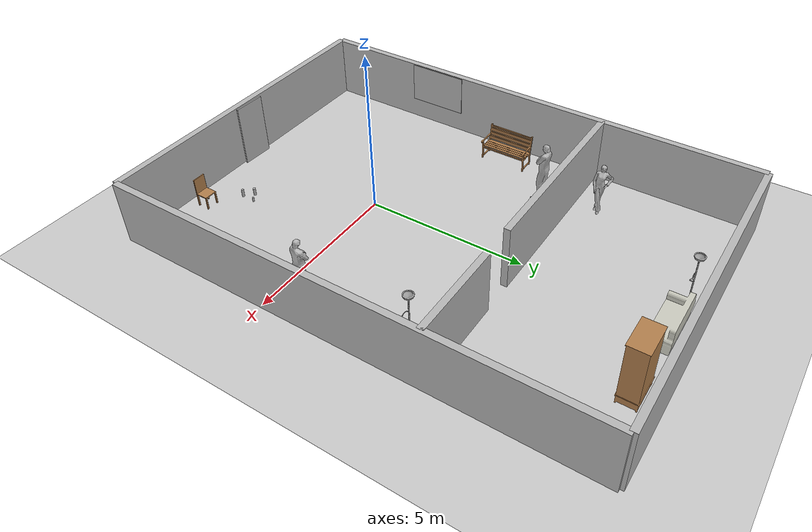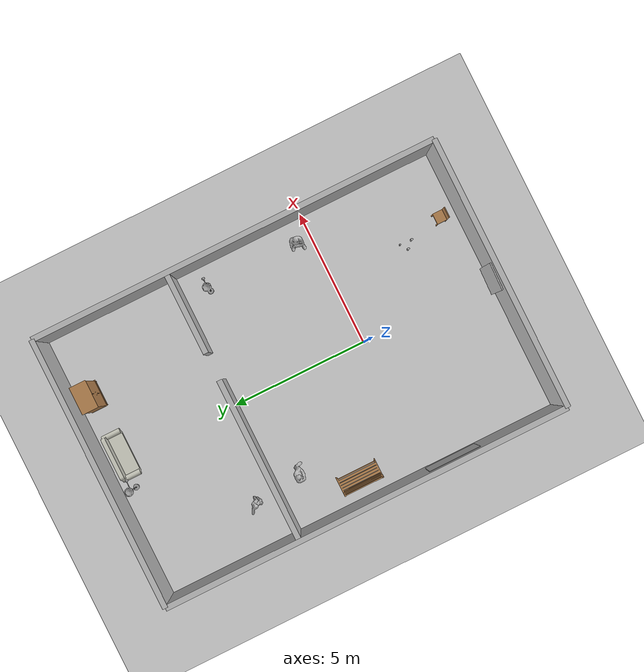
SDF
<sdf version="1.4">
 <world name="default">
  <physics type="ode">
   <gravity>0 0 -9.81</gravity>
   <ode>
    <solver><type>quick</type><iters>20</iters><sor>1.0</sor></solver>
    <constraints>
     <cfm>0.0</cfm>
     <erp>0.2</erp>
     <contact_max_correcting_vel>100.0</contact_max_correcting_vel>
     <contact_surface_layer>0.0</contact_surface_layer>
    </constraints>
   </ode>
   <real_time_update_rate>1000</real_time_update_rate>
   <max_step_size>0.001</max_step_size>
  </physics>
  <include><uri>model://sun</uri></include>
  <include><uri>model://ground_plane</uri></include>
  <model name="wall_1_model">
   <pose>0 -5 1 0 0 0</pose>
   <static>true</static>
   <link name="wall_1_body">
    <inertial>
     <mass>1.0</mass>
     <inertia><ixx>1.0</ixx><ixy>0.0</ixy><ixz>0.0</ixz><iyy>1.0</iyy><iyz>0.0</iyz><izz>1.0</izz></inertia>
    </inertial>
    <collision name="collision"><geometry><box><size>10 0.2 2</size></box></geometry></collision>
    <visual name="visual"><geometry><box><size>10 0.2 2</size></box></geometry></visual>
   </link>
  </model>
  <model name="wall_2_model">
   <pose>0 10 1 0 0 0</pose>
   <static>true</static>
   <link name="wall_2_body">
    <inertial>
     <mass>1.0</mass>
     <inertia><ixx>1.0</ixx><ixy>0.0</ixy><ixz>0.0</ixz><iyy>1.0</iyy><iyz>0.0</iyz><izz>1.0</izz></inertia>
    </inertial>
    <collision name="collision"><geometry><box><size>10 0.2 2</size></box></geometry></collision>
    <visual name="visual"><geometry><box><size>10 0.2 2</size></box></geometry></visual>
   </link>
  </model>
  <model name="wall_3_model">
   <pose>-5 2.5 1 0 0 0</pose>
   <static>true</static>
   <link name="wall_3_body">
    <inertial>
     <mass>1.0</mass>
     <inertia><ixx>1.0</ixx><ixy>0.0</ixy><ixz>0.0</ixz><iyy>1.0</iyy><iyz>0.0</iyz><izz>1.0</izz></inertia>
    </inertial>
    <collision name="collision"><geometry><box><size>0.2 15 2</size></box></geometry></collision>
    <visual name="visual"><geometry><box><size>0.2 15 2</size></box></geometry></visual>
   </link>
  </model>
  <model name="wall_4_model">
   <pose>5 2.5 1 0 0 0</pose>
   <static>true</static>
   <link name="wall_4_body">
    <inertial>
     <mass>1.0</mass>
     <inertia><ixx>1.0</ixx><ixy>0.0</ixy><ixz>0.0</ixz><iyy>1.0</iyy><iyz>0.0</iyz><izz>1.0</izz></inertia>
    </inertial>
    <collision name="collision"><geometry><box><size>0.2 15 2</size></box></geometry></collision>
    <visual name="visual"><geometry><box><size>0.2 15 2</size></box></geometry></visual>
   </link>
  </model>
  <model name="wall_5_model">
   <pose>-2 5 1 0 0 0</pose>
   <static>true</static>
   <link name="wall_5_body">
    <inertial>
     <mass>1.0</mass>
     <inertia><ixx>1.0</ixx><ixy>0.0</ixy><ixz>0.0</ixz><iyy>1.0</iyy><iyz>0.0</iyz><izz>1.0</izz></inertia>
    </inertial>
    <collision name="collision"><geometry><box><size>6 0.2 2</size></box></geometry></collision>
    <visual name="visual"><geometry><box><size>6 0.2 2</size></box></geometry></visual>
   </link>
  </model>
  <model name="wall_6_model">
   <pose>3.5 5 1 0 0 0</pose>
   <static>true</static>
   <link name="wall_6_body">
    <inertial>
     <mass>1.0</mass>
     <inertia><ixx>1.0</ixx><ixy>0.0</ixy><ixz>0.0</ixz><iyy>1.0</iyy><iyz>0.0</iyz><izz>1.0</izz></inertia>
    </inertial>
    <collision name="collision"><geometry><box><size>3 0.2 2</size></box></geometry></collision>
    <visual name="visual"><geometry><box><size>3 0.2 2</size></box></geometry></visual>
   </link>
  </model>
  <include><uri>model://dining_chair</uri><pose>2.5 -4.5 0.01 0 0 0</pose></include>
  <include>
   <name>pringles</name>
   <uri>model://pringles</uri>
   <pose>2.40654 -3 0.777497 5.1e-05 -0.000165 0.00025</pose>
  </include>
  <include><uri>model://coke_can_slim</uri><pose>2.43428 -2.57448 0.734997 9.1e-05 -0.00023 0</pose></include>
  <include><uri>model://pringles2</uri><pose>2.17347 -2.75653 0.657498 3.9e-05 -0.000197 -3e-06</pose></include>
  <include>
   <uri>model://wardrobe</uri>
   <pose>2.000000 9.000000 0.000000 0.000000 0.000000 0.000000</pose>
  </include>
  <include><uri>model://aruco_board</uri><pose>-4.85 -0.86 1.35 0 0 0</pose></include>
  <include>
   <uri>model://wall_with_reem_photo</uri>
   <pose>-0.025898 -4.80869 1 1e-06 -6e-06 -1.60377</pose>
  </include>
  <include><uri>model://bench</uri><pose>-4.465430 1.502710 0.000000 0.000000 0.000000 0.000000</pose></include>
  <include><uri>model://sofa</uri><pose>-0.518195 9.000000 0.000000 0.000000 0.000000 0.000000</pose></include>
  <include>
   <name>floor_lamp_0</name>
   <uri>model://floor_lamp</uri>
   <pose>-1.000000 9.417350 0.000000 0.000000 0.000000 0.000000</pose>
  </include>
  <include>
   <name>floor_lamp_1</name>
   <uri>model://floor_lamp</uri>
   <pose>4.000000 4.00000 0.000000 0.000000 0.000000 0.000000</pose>
  </include>
  <include>
   <name>male03</name>
   <uri>model://citizen_extras_male_03</uri>
   <pose>4.0 0.53 0.01 0.0125 0.0023 -1.718</pose>
  </include>
  <include>
   <name>female03</name>
   <uri>model://citizen_extras_female_03</uri>
   <pose>-3.3 5.8 0.01 0.011 0.0126 1.6451</pose>
  </include>
  <include>
   <name>male03bis</name>
   <uri>model://citizen_extras_male_03</uri>
   <pose>-3.000000 4.000000 0.000000 0.000000 0.000000 0.000000</pose>
  </include>
 </world>
</sdf>

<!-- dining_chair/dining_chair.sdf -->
<sdf version="1.4">
  <model name="dining_chair">
    <static>1</static>
    <link name="link">

      <collision name="colision1">
        <pose>0 0 0 0 0 0</pose>
        <geometry>
          <mesh>
            <uri>model://dining_chair/meshes/dining_chair.stl</uri>
	    <scale> 1 1 1 </scale>
          </mesh>
        </geometry>
        <surface>
          <bounce />
          <friction>
            <ode />
          </friction>
          <contact>
            <ode />
          </contact>
        </surface>
      </collision>

      <visual name="visual1">
        <pose>0 0 0 0 0 0</pose>
        <geometry>
          <mesh>
            <uri>model://dining_chair/meshes/dining_chair.stl</uri>
	    <scale> 1 1 1 </scale>
          </mesh>
        </geometry>
        <material>
          <script>
            <uri>file://media/materials/scripts/gazebo.material</uri>
            <name>Gazebo/Wood</name>
          </script>
        </material>
      </visual>

      <velocity_decay>
        <linear>0.000000</linear>
        <angular>0.000000</angular>
      </velocity_decay>
      <self_collide>0</self_collide>
      <kinematic>0</kinematic>
      <gravity>1</gravity>
    </link>
  </model>
</sdf>

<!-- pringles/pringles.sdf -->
<sdf version='1.4'>
  <model name="pringles">
      <static>0</static>
      <link name='link'>
        <inertial>
          <mass>0.25</mass>
          <inertia>
            <ixx>0.000000</ixx>
            <ixy>0.000000</ixy>
            <ixz>0.000000</ixz>
            <iyy>0.000000</iyy>
            <iyz>0.000000</iyz>
            <izz>0.000000</izz>
          </inertia>
        </inertial>
        <collision name='collision'>
          <geometry>
            <cylinder>
              <radius>0.04</radius>
              <length>0.235</length>
            </cylinder>
          </geometry>
          <surface>
            <bounce/>
            <friction>
              <ode/>
            </friction>
            <contact>
              <ode/>
            </contact>
          </surface>
        </collision>
        <visual name='visual'>
          <geometry>
            <cylinder>
              <radius>0.04</radius>
              <length>0.235</length>
            </cylinder>
          </geometry>
          <material>
            <script>
	      <uri>model://pringles/material/scripts</uri>
	      <uri>model://pringles/material/textures</uri>
              <name>Custom/pringles</name>
            </script>
          </material>
        </visual>
        <velocity_decay>
          <linear>0.000000</linear>
          <angular>0.000000</angular>
        </velocity_decay>
        <self_collide>0</self_collide>
        <kinematic>0</kinematic>
        <gravity>1</gravity>
      </link>
  </model>
</sdf>

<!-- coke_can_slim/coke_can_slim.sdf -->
<sdf version='1.4'>
  <model name="coke_can_slim">
      <static>0</static>
      <link name='link'>
        <inertial>
          <mass>0.15</mass>
          <inertia>
            <ixx>2079.98</ixx>
            <ixy>0.000000</ixy>
            <ixz>0.000000</ixz>
            <iyy>2079.98</iyy>
            <iyz>0.000000</iyz>
            <izz>419.21</izz>
          </inertia>
        </inertial>
        <collision name='collision'>
          <geometry>
            <cylinder>
              <radius>0.029</radius>
              <length>0.15</length>
            </cylinder>
          </geometry>
          <surface>
            <bounce/>
            <friction>
              <ode/>
            </friction>
            <contact>
              <ode/>
            </contact>
          </surface>
        </collision>
        <visual name='visual'>
          <geometry>
            <cylinder>
              <radius>0.029</radius>
              <length>0.15</length>
            </cylinder>
          </geometry>
          <material>
            <script>
              <uri>model://coke_can_slim/material/scripts</uri>
              <uri>model://coke_can_slim/material/textures</uri>
              <name>Custom/coke_can_slim</name>
            </script>
          </material>
        </visual>
        <velocity_decay>
          <linear>0.000000</linear>
          <angular>0.000000</angular>
        </velocity_decay>
        <self_collide>0</self_collide>
        <kinematic>0</kinematic>
        <gravity>1</gravity>
      </link>
  </model>
</sdf>

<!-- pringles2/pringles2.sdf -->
<sdf version="1.4">
  <model name="pringles2">
    <static>0</static>
    <link name="link">
      <inertial>
        <mass>0.25</mass>
        <inertia>
          <ixx>0.000000</ixx>
          <ixy>0.000000</ixy>
          <ixz>0.000000</ixz>
          <iyy>0.000000</iyy>
          <iyz>0.000000</iyz>
          <izz>0.000000</izz>
        </inertia>
      </inertial>
      <collision name="collision">
        <pose>0 0 0.12 3.1416 0 0</pose>
        <geometry>
          <cylinder>
            <radius>0.04</radius>
            <length>0.235</length>
          </cylinder>
        </geometry>
        <surface>
          <bounce />
          <friction>
            <ode />
          </friction>
          <contact>
            <ode />
          </contact>
        </surface>
      </collision>
      <visual name="visual">
        <pose>0 0 0.12 3.1416 0 0</pose>
        <geometry>
          <cylinder>
            <radius>0.04</radius>
            <length>0.235</length>
          </cylinder>
        </geometry>
        <material>
          <script>
	      <uri>model://pringles2/material/scripts</uri>
	      <uri>model://pringles2/material/textures</uri>
              <name>Custom/pringles2</name>
          </script>
        </material>
      </visual>
      <velocity_decay>
        <linear>0.000000</linear>
        <angular>0.000000</angular>
      </velocity_decay>
      <self_collide>0</self_collide>
      <kinematic>0</kinematic>
      <gravity>1</gravity>
    </link>
  </model>
</sdf>

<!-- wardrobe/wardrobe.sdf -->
<sdf version="1.4">
  <model name="wardrobe">
    <static>1</static>
    <link name="link">

      <collision name="colision1">
        <pose>0 0 0 0 0 0</pose>
        <geometry>
          <mesh>
            <uri>model://wardrobe/meshes/wardrobe.stl</uri>
	    <scale> 1 1 1 </scale>
          </mesh>
        </geometry>
        <surface>
          <bounce />
          <friction>
            <ode />
          </friction>
          <contact>
            <ode />
          </contact>
        </surface>
      </collision>

      <visual name="visual1">
        <pose>0 0 0 0 0 0</pose>
        <geometry>
          <mesh>
            <uri>model://wardrobe/meshes/wardrobe.stl</uri>
	    <scale> 1 1 1 </scale>
          </mesh>
        </geometry>
        <material>
          <script>
            <uri>file://media/materials/scripts/gazebo.material</uri>
            <name>Gazebo/WoodPallet</name>
          </script>
        </material>
      </visual>

      <velocity_decay>
        <linear>0.000000</linear>
        <angular>0.000000</angular>
      </velocity_decay>
      <self_collide>0</self_collide>
      <kinematic>0</kinematic>
      <gravity>1</gravity>
    </link>
  </model>
</sdf>

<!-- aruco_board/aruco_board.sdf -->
<sdf version="1.4">
  <model name="aruco_board">
    <static>0</static>
    <link name="marker">
      <inertial>
        <mass>0.5</mass>
        <inertia>
          <ixx>0.000000</ixx>
          <ixy>0.000000</ixy>
          <ixz>0.000000</ixz>
          <iyy>0.000000</iyy>
          <iyz>0.000000</iyz>
          <izz>0.000000</izz>
        </inertia>
      </inertial>
      <visual name="visual">
        <geometry>
          <box>
            <size>0.02 1.9 1.3</size>
          </box>
        </geometry>
        <material>
          <script>
	    <uri>model://aruco_board/material/scripts</uri>
	    <uri>model://aruco_board/material/textures</uri>
            <name>Aruco/aruco_board</name>
          </script>
        </material>
      </visual>
      <collision name="collision">
        <geometry>
          <box>
            <size>0.02 1.9 1.3</size>
            <!-- SIZE OF THE MARKER + MARGIN -->
          </box>
        </geometry>
        <surface>
          <bounce />
          <friction>
            <ode />
          </friction>
          <contact>
            <ode />
          </contact>
        </surface>
      </collision>
      <self_collide>1</self_collide>
      <kinematic>0</kinematic>
      <gravity>0</gravity>
    </link>
  </model>
</sdf>

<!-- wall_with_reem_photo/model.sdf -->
<sdf version='1.4'>
  <model name='table'>
      <link name="wallWithREEMphoto_body">
        <inertial>
          <mass>4.0</mass>
          <inertia>
            <ixx>1.0</ixx>
            <ixy>0.0</ixy>
            <ixz>0.0</ixz>
            <iyy>1.0</iyy>
            <iyz>0.0</iyz>
            <izz>1.0</izz>
          </inertia>
        </inertial>
        <collision name="collision">
          <geometry>
            <box>
              <size>0.05 1.0 2.0</size> <!-- Wall dimensions: thickness width length -->
            </box>
          </geometry>
        </collision>
        <visual name="visual">
          <geometry>
            <box>
              <size>0.05 1.0 2.0</size> <!-- Wall dimensions: thickness width length -->
            </box>
          </geometry>
          <material>
            <script>
	      <uri>model://wall_with_reem_photo/material/scripts</uri>
	      <uri>model://wall_with_reem_photo/material/textures</uri>
              <name>Custom/REEM_photo0</name>
            </script>
          </material>
        </visual>
      </link>
    </model>
</sdf>

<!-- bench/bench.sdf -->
<sdf version="1.4">
  <model name="bench">
    <static>1</static>
    <link name="link">

      <collision name="colision1">
        <pose>0 0 0 0 0 0</pose>
        <geometry>
          <mesh>
            <uri>model://bench/meshes/bench.stl</uri>
	    <scale> 1 1 1 </scale>
          </mesh>
        </geometry>
        <surface>
          <bounce />
          <friction>
            <ode />
          </friction>
          <contact>
            <ode />
          </contact>
        </surface>
      </collision>

      <visual name="visual1">
        <pose>0 0 0 0 0 0</pose>
        <geometry>
          <mesh>
            <uri>model://bench/meshes/bench.stl</uri>
	    <scale> 1 1 1 </scale>
          </mesh>
        </geometry>
        <material>
          <script>
            <uri>file://media/materials/scripts/gazebo.material</uri>
            <name>Gazebo/Wood</name>
          </script>
        </material>
      </visual>

      <velocity_decay>
        <linear>0.000000</linear>
        <angular>0.000000</angular>
      </velocity_decay>
      <self_collide>0</self_collide>
      <kinematic>0</kinematic>
      <gravity>1</gravity>
    </link>
  </model>
</sdf>

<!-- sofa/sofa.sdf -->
<sdf version="1.4">
  <model name="sofa">
    <static>1</static>
    <link name="link">

      <collision name="colision1">
        <pose>0 0 0 0 0 0</pose>
        <geometry>
          <mesh>
            <uri>model://sofa/meshes/sofa.stl</uri>
	    <scale> 1 1 1 </scale>
          </mesh>
        </geometry>
        <surface>
          <bounce />
          <friction>
            <ode />
          </friction>
          <contact>
            <ode />
          </contact>
        </surface>
      </collision>

      <visual name="visual1">
        <pose>0 0 0 0 0 0</pose>
        <geometry>
          <mesh>
            <uri>model://sofa/meshes/sofa.stl</uri>
	    <scale> 1 1 1 </scale>
          </mesh>
        </geometry>
        <material>
          <script>
            <uri>file://media/materials/scripts/gazebo.material</uri>
            <name>Gazebo/PaintedWall</name>
          </script>
        </material>
      </visual>

      <velocity_decay>
        <linear>0.000000</linear>
        <angular>0.000000</angular>
      </velocity_decay>
      <self_collide>0</self_collide>
      <kinematic>0</kinematic>
      <gravity>1</gravity>
    </link>
  </model>
</sdf>

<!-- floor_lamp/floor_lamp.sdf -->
<sdf version="1.4">
  <model name="floor_lamp">
    <static>1</static>
    <link name="link">

      <collision name="colision1">
        <pose>0 0 0 0 0 0</pose>
        <geometry>
          <mesh>
            <uri>model://floor_lamp/meshes/floor_lamp.stl</uri>
	    <scale> 1 1 1 </scale>
          </mesh>
        </geometry>
        <surface>
          <bounce />
          <friction>
            <ode />
          </friction>
          <contact>
            <ode />
          </contact>
        </surface>
      </collision>

      <visual name="visual1">
        <pose>0 0 0 0 0 0</pose>
        <geometry>
          <mesh>
            <uri>model://floor_lamp/meshes/floor_lamp.stl</uri>
	    <scale> 1 1 1 </scale>
          </mesh>
        </geometry>
        <material>
          <script>
            <uri>file://media/materials/scripts/gazebo.material</uri>
            <name>Gazebo/Grey</name>
          </script>
        </material>
      </visual>

      <velocity_decay>
        <linear>0.000000</linear>
        <angular>0.000000</angular>
      </velocity_decay>
      <self_collide>0</self_collide>
      <kinematic>0</kinematic>
      <gravity>1</gravity>
    </link>
  </model>
</sdf>

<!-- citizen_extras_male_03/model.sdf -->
<sdf version="1.4">

 <model name="citizen_extras_male_03">

    <link name="link">

     <inertial>

       <mass>20</mass>

       <inertia>

         <ixx>0.0</ixx>

         <ixy>0.0</ixy>

         <ixz>0.0</ixz>

         <iyy>0.0</iyy>

         <iyz>0.0</iyz>

         <izz>0.0</izz>

       </inertia>

     </inertial>

     <collision name="collision">

       <pose>0 0 0 0 0 0</pose>

       <geometry>

         <mesh>

           <uri>model://citizen_extras_male_03/meshes/mesh.dae</uri>

         </mesh>

       </geometry>

     </collision>

     <visual name="visual">

       <pose>0 0 0 0 0 0</pose>

       <geometry>

         <mesh>

           <uri>model://citizen_extras_male_03/meshes/mesh.dae</uri>

         </mesh>

       </geometry>

     </visual>

    </link>

 </model>
</sdf>

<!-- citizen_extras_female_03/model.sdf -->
<sdf version="1.4">

 <model name="citizen_extras_female_03">

    <link name="link">

     <inertial>

       <mass>20</mass>

       <inertia>

         <ixx>0.0</ixx>

         <ixy>0.0</ixy>

         <ixz>0.0</ixz>

         <iyy>0.0</iyy>

         <iyz>0.0</iyz>

         <izz>0.0</izz>

       </inertia>

     </inertial>

     <collision name="collision">

       <pose>0 0 0 0 0 0</pose>

       <geometry>

         <mesh>

           <uri>model://citizen_extras_female_03/meshes/mesh.dae</uri>

         </mesh>

       </geometry>

     </collision>

     <visual name="visual">

       <pose>0 0 0 0 0 0</pose>

       <geometry>

         <mesh>

           <uri>model://citizen_extras_female_03/meshes/mesh.dae</uri>

         </mesh>

       </geometry>

     </visual>

    </link>

 </model>
</sdf>
